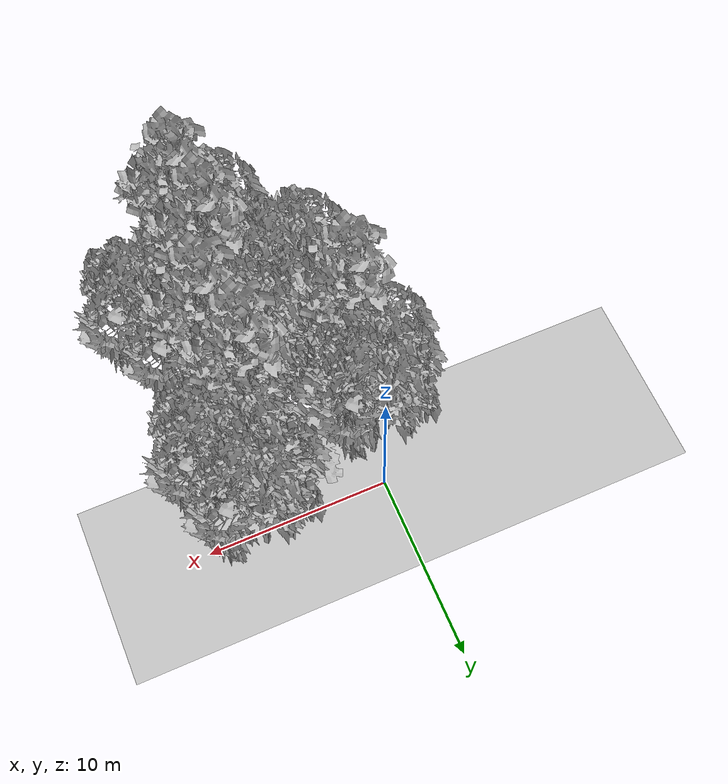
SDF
<sdf version="1.7">
 <world name="default">
  <model name="ground_plane">
   <static>1</static>
   <link name="link">
    <collision name="collision">
     <pose>-50 0 0 0 -0 0</pose>
     <geometry><plane><normal>0 0 1</normal><size>100 100</size></plane></geometry>
     <surface><contact><ode><min_depth>0.01</min_depth><max_vel>0</max_vel></ode></contact></surface>
    </collision>
    <visual name="grass">
     <cast_shadows>0</cast_shadows>
     <geometry>
      <mesh>
       <scale>0.5814285714285714 0.18142857142857144 0.1</scale>
       <uri>file://grass_plane/meshes/grass_plane.dae</uri>
      </mesh>
     </geometry>
    </visual>
   </link>
  </model>
  <model name="Tree 27">
   <static>1</static>
   <pose>-0.704515399992232 -3.799176612060874 0 1.57079 -0 0</pose>
   <link name="link">
    <collision name="collision">
     <geometry><mesh><scale>3.5 5 3.5</scale><uri>model://tree_2/meshes/tree_2.obj</uri></mesh></geometry>
    </collision>
    <visual name="visual">
     <geometry><mesh><scale>3.5 5 3.5</scale><uri>model://tree_2/meshes/tree_2.obj</uri></mesh></geometry>
    </visual>
   </link>
  </model>
  <model name="Tree 118">
   <static>1</static>
   <pose>6.907153149258193 -8.438138192322821 0 1.57079 -0 0</pose>
   <link name="link">
    <collision name="collision">
     <geometry><mesh><scale>3.5 5 3.5</scale><uri>model://tree_2/meshes/tree_2.obj</uri></mesh></geometry>
    </collision>
    <visual name="visual">
     <geometry><mesh><scale>3.5 5 3.5</scale><uri>model://tree_2/meshes/tree_2.obj</uri></mesh></geometry>
    </visual>
   </link>
  </model>
  <model name="Tree 119">
   <static>1</static>
   <pose>0.9605224445650933 -10.391918876451196 0 1.57079 -0 0</pose>
   <link name="link">
    <collision name="collision">
     <geometry><mesh><scale>3.5 5 3.5</scale><uri>model://tree_2/meshes/tree_2.obj</uri></mesh></geometry>
    </collision>
    <visual name="visual">
     <geometry><mesh><scale>3.5 5 3.5</scale><uri>model://tree_2/meshes/tree_2.obj</uri></mesh></geometry>
    </visual>
   </link>
  </model>
  <model name="Tree 178">
   <static>1</static>
   <pose>0.8756512924831057 -7.257401478296455 0 1.57079 -0 0</pose>
   <link name="link">
    <collision name="collision">
     <geometry><mesh><scale>3.5 5 3.5</scale><uri>model://tree_2/meshes/tree_2.obj</uri></mesh></geometry>
    </collision>
    <visual name="visual">
     <geometry><mesh><scale>3.5 5 3.5</scale><uri>model://tree_2/meshes/tree_2.obj</uri></mesh></geometry>
    </visual>
   </link>
  </model>
  <model name="Tree 191">
   <static>1</static>
   <pose>5.096188738679707 -13.885166644835287 0 1.57079 -0 0</pose>
   <link name="link">
    <collision name="collision">
     <geometry><mesh><scale>3.5 5 3.5</scale><uri>model://tree_9/meshes/tree_9.obj</uri></mesh></geometry>
    </collision>
    <visual name="visual">
     <geometry><mesh><scale>3.5 5 3.5</scale><uri>model://tree_9/meshes/tree_9.obj</uri></mesh></geometry>
    </visual>
   </link>
  </model>
  <model name="Tree 196">
   <static>1</static>
   <pose>6.837925497896876 0.414590545667215 0 1.57079 -0 0</pose>
   <link name="link">
    <collision name="collision">
     <geometry><mesh><scale>3.5 5 3.5</scale><uri>model://tree_2/meshes/tree_2.obj</uri></mesh></geometry>
    </collision>
    <visual name="visual">
     <geometry><mesh><scale>3.5 5 3.5</scale><uri>model://tree_2/meshes/tree_2.obj</uri></mesh></geometry>
    </visual>
   </link>
  </model>
  <model name="Tree 203">
   <static>1</static>
   <pose>6.537982232965916 -2.584879522896218 0 1.57079 -0 0</pose>
   <link name="link">
    <collision name="collision">
     <geometry><mesh><scale>3.5 5 3.5</scale><uri>model://tree_2/meshes/tree_2.obj</uri></mesh></geometry>
    </collision>
    <visual name="visual">
     <geometry><mesh><scale>3.5 5 3.5</scale><uri>model://tree_2/meshes/tree_2.obj</uri></mesh></geometry>
    </visual>
   </link>
  </model>
  <model name="Tree 206">
   <static>1</static>
   <pose>4.694479778694564 -11.03949932131688 0 1.57079 -0 0</pose>
   <link name="link">
    <collision name="collision">
     <geometry><mesh><scale>3.5 5 3.5</scale><uri>model://tree_9/meshes/tree_9.obj</uri></mesh></geometry>
    </collision>
    <visual name="visual">
     <geometry><mesh><scale>3.5 5 3.5</scale><uri>model://tree_9/meshes/tree_9.obj</uri></mesh></geometry>
    </visual>
   </link>
  </model>
  <model name="Tree 213">
   <static>1</static>
   <pose>5.213793697022844 -9.708154658499748 0 1.57079 -0 0</pose>
   <link name="link">
    <collision name="collision">
     <geometry><mesh><scale>3.5 5 3.5</scale><uri>model://tree_2/meshes/tree_2.obj</uri></mesh></geometry>
    </collision>
    <visual name="visual">
     <geometry><mesh><scale>3.5 5 3.5</scale><uri>model://tree_2/meshes/tree_2.obj</uri></mesh></geometry>
    </visual>
   </link>
  </model>
  <model name="Tree 221">
   <static>1</static>
   <pose>2.8589327563450837 -3.26173101796398 0 1.57079 -0 0</pose>
   <link name="link">
    <collision name="collision">
     <geometry><mesh><scale>4 2.5 4</scale><uri>model://tree_1/meshes/tree_1.obj</uri></mesh></geometry>
    </collision>
    <visual name="visual">
     <geometry><mesh><scale>4 2.5 4</scale><uri>model://tree_1/meshes/tree_1.obj</uri></mesh></geometry>
    </visual>
   </link>
  </model>
  <model name="Tree 249">
   <static>1</static>
   <pose>3.530145267921668 -7.935309635999999 0 1.57079 -0 0</pose>
   <link name="link">
    <collision name="collision">
     <geometry><mesh><scale>3.5 5 3.5</scale><uri>model://tree_2/meshes/tree_2.obj</uri></mesh></geometry>
    </collision>
    <visual name="visual">
     <geometry><mesh><scale>3.5 5 3.5</scale><uri>model://tree_2/meshes/tree_2.obj</uri></mesh></geometry>
    </visual>
   </link>
  </model>
  <model name="Tree 257">
   <static>1</static>
   <pose>-0.3316179460514803 -2.1043075357703973 0 1.57079 -0 0</pose>
   <link name="link">
    <collision name="collision">
     <geometry><mesh><scale>3.5 5 3.5</scale><uri>model://tree_2/meshes/tree_2.obj</uri></mesh></geometry>
    </collision>
    <visual name="visual">
     <geometry><mesh><scale>3.5 5 3.5</scale><uri>model://tree_2/meshes/tree_2.obj</uri></mesh></geometry>
    </visual>
   </link>
  </model>
  <model name="Tree 263">
   <static>1</static>
   <pose>4.694521977797713 -6.105157001228932 0 1.57079 -0 0</pose>
   <link name="link">
    <collision name="collision">
     <geometry><mesh><scale>3.5 5 3.5</scale><uri>model://tree_2/meshes/tree_2.obj</uri></mesh></geometry>
    </collision>
    <visual name="visual">
     <geometry><mesh><scale>3.5 5 3.5</scale><uri>model://tree_2/meshes/tree_2.obj</uri></mesh></geometry>
    </visual>
   </link>
  </model>
  <model name="Tree 299">
   <static>1</static>
   <pose>3.514573179022875 -11.358783891537357 0 1.57079 -0 0</pose>
   <link name="link">
    <collision name="collision">
     <geometry><mesh><scale>3.5 5 3.5</scale><uri>model://tree_2/meshes/tree_2.obj</uri></mesh></geometry>
    </collision>
    <visual name="visual">
     <geometry><mesh><scale>3.5 5 3.5</scale><uri>model://tree_2/meshes/tree_2.obj</uri></mesh></geometry>
    </visual>
   </link>
  </model>
  <model name="Tree 312">
   <static>1</static>
   <pose>6.187130970096078 -7.167900283804922 0 1.57079 -0 0</pose>
   <link name="link">
    <collision name="collision">
     <geometry><mesh><scale>3.5 5 3.5</scale><uri>model://tree_9/meshes/tree_9.obj</uri></mesh></geometry>
    </collision>
    <visual name="visual">
     <geometry><mesh><scale>3.5 5 3.5</scale><uri>model://tree_9/meshes/tree_9.obj</uri></mesh></geometry>
    </visual>
   </link>
  </model>
  <model name="Tree 331">
   <static>1</static>
   <pose>6.497873526623231 -5.841528652029419 0 1.57079 -0 0</pose>
   <link name="link">
    <collision name="collision">
     <geometry><mesh><scale>3 2 3</scale><uri>model://tree_3/meshes/tree_3.obj</uri></mesh></geometry>
    </collision>
    <visual name="visual">
     <geometry><mesh><scale>3 2 3</scale><uri>model://tree_3/meshes/tree_3.obj</uri></mesh></geometry>
    </visual>
   </link>
  </model>
  <model name="Tree 439">
   <static>1</static>
   <pose>-0.36911222302020263 -5.503485344457918 0 1.57079 -0 0</pose>
   <link name="link">
    <collision name="collision">
     <geometry><mesh><scale>3.5 5 3.5</scale><uri>model://tree_9/meshes/tree_9.obj</uri></mesh></geometry>
    </collision>
    <visual name="visual">
     <geometry><mesh><scale>3.5 5 3.5</scale><uri>model://tree_9/meshes/tree_9.obj</uri></mesh></geometry>
    </visual>
   </link>
  </model>
  <model name="Tree 452">
   <static>1</static>
   <pose>5.382554972885721 -4.302781279948022 0 1.57079 -0 0</pose>
   <link name="link">
    <collision name="collision">
     <geometry><mesh><scale>3.5 5 3.5</scale><uri>model://tree_9/meshes/tree_9.obj</uri></mesh></geometry>
    </collision>
    <visual name="visual">
     <geometry><mesh><scale>3.5 5 3.5</scale><uri>model://tree_9/meshes/tree_9.obj</uri></mesh></geometry>
    </visual>
   </link>
  </model>
  <model name="Tree 488">
   <static>1</static>
   <pose>4.234995478249282 -14.510810040082854 0 1.57079 -0 0</pose>
   <link name="link">
    <collision name="collision">
     <geometry><mesh><scale>3.5 5 3.5</scale><uri>model://tree_2/meshes/tree_2.obj</uri></mesh></geometry>
    </collision>
    <visual name="visual">
     <geometry><mesh><scale>3.5 5 3.5</scale><uri>model://tree_2/meshes/tree_2.obj</uri></mesh></geometry>
    </visual>
   </link>
  </model>
  <model name="Tree 519">
   <static>1</static>
   <pose>8.323021470265111 -10.91084376597427 0 1.57079 -0 0</pose>
   <link name="link">
    <collision name="collision">
     <geometry><mesh><scale>3.5 5 3.5</scale><uri>model://tree_2/meshes/tree_2.obj</uri></mesh></geometry>
    </collision>
    <visual name="visual">
     <geometry><mesh><scale>3.5 5 3.5</scale><uri>model://tree_2/meshes/tree_2.obj</uri></mesh></geometry>
    </visual>
   </link>
  </model>
  <model name="Tree 525">
   <static>1</static>
   <pose>7.752061922536683 -2.3417315108227275 0 1.57079 -0 0</pose>
   <link name="link">
    <collision name="collision">
     <geometry><mesh><scale>3.5 5 3.5</scale><uri>model://tree_2/meshes/tree_2.obj</uri></mesh></geometry>
    </collision>
    <visual name="visual">
     <geometry><mesh><scale>3.5 5 3.5</scale><uri>model://tree_2/meshes/tree_2.obj</uri></mesh></geometry>
    </visual>
   </link>
  </model>
  <model name="Bush 0">
   <static>1</static>
   <pose>2.878451618522732 -8.413297433277734 0 1.57079 -0 0</pose>
   <link name="link">
    <collision name="collision">
     <geometry><mesh><scale>2 2 2</scale><uri>model://bush_3/meshes/bush_3.obj</uri></mesh></geometry>
     <surface><contact><collide_without_contact>false</collide_without_contact></contact></surface>
    </collision>
    <visual name="visual">
     <geometry><mesh><scale>2 2 2</scale><uri>model://bush_3/meshes/bush_3.obj</uri></mesh></geometry>
    </visual>
   </link>
  </model>
 </world>
</sdf>
